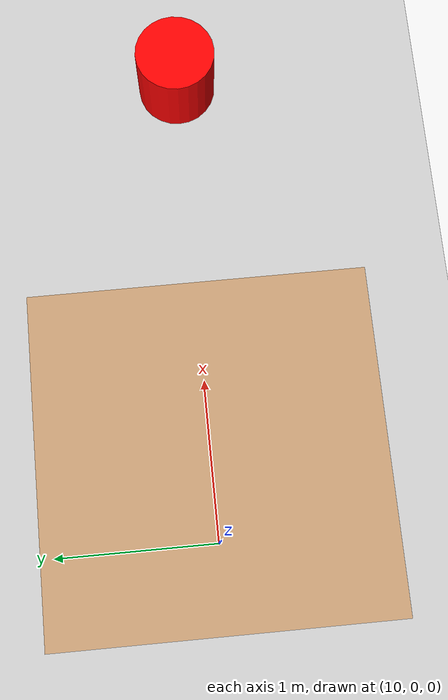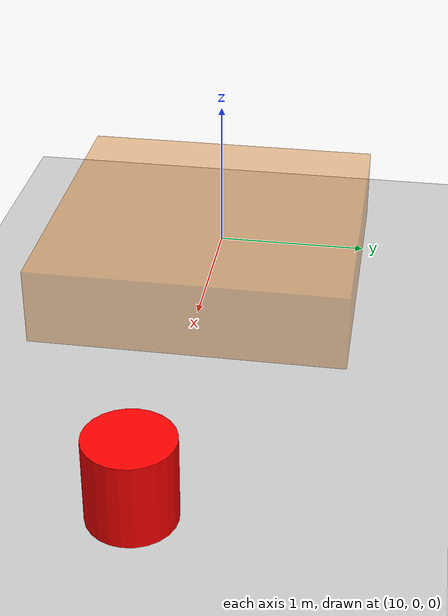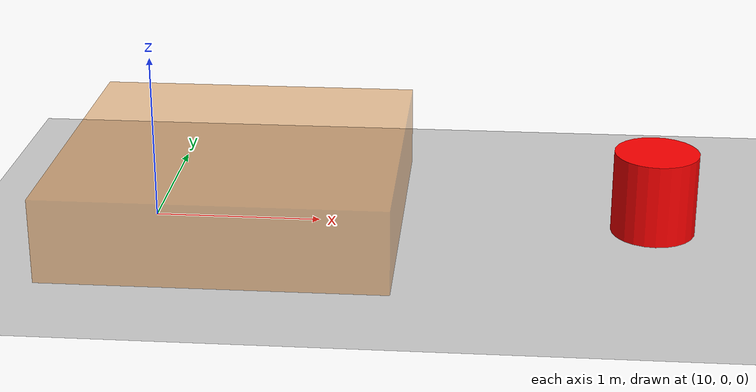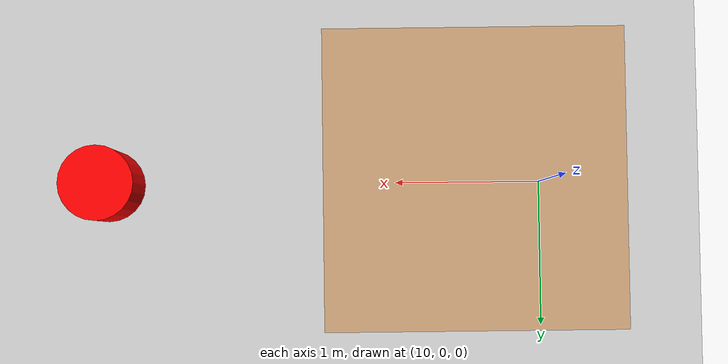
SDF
<?xml version="1.0" ?>
<sdf version="1.5">
  <world name="disaster_scene_e">
    <!-- Transport/ROS bridge is inert for ideal backend and required by RotorS. -->
    <plugin name="rotors_ros_interface_plugin"
            filename="librotors_gazebo_ros_interface_plugin.so" />
    <include>
      <uri>model://sun</uri>
    </include>
    <include>
      <uri>model://ground_plane</uri>
    </include>

    <physics type="ode">
      <max_step_size>0.001</max_step_size>
      <real_time_update_rate>1000</real_time_update_rate>
    </physics>

    <model name="late_barrier_marker">
      <static>true</static>
      <pose>10.5 0 0.25 0 0 0</pose>
      <link name="link">
        <visual name="visual">
          <geometry><box><size>2.0 2.0 0.5</size></box></geometry>
          <material><ambient>0.8 0.4 0 0.4</ambient><diffuse>0.8 0.4 0 0.4</diffuse></material>
        </visual>
      </link>
    </model>

    <model name="goal_marker">
      <static>true</static>
      <pose>13 0 0.25 0 0 0</pose>
      <link name="link">
        <visual name="visual">
          <geometry><cylinder><radius>0.25</radius><length>0.5</length></cylinder></geometry>
          <material><ambient>1 0 0 1</ambient><diffuse>1 0 0 1</diffuse></material>
        </visual>
      </link>
    </model>
  </world>
</sdf>
